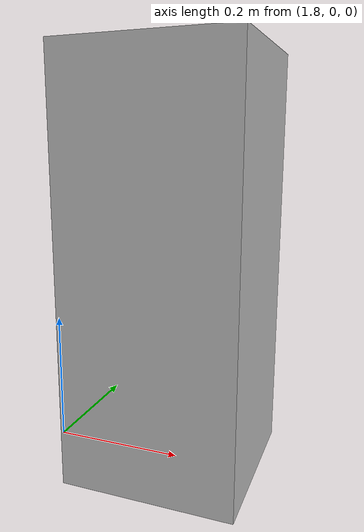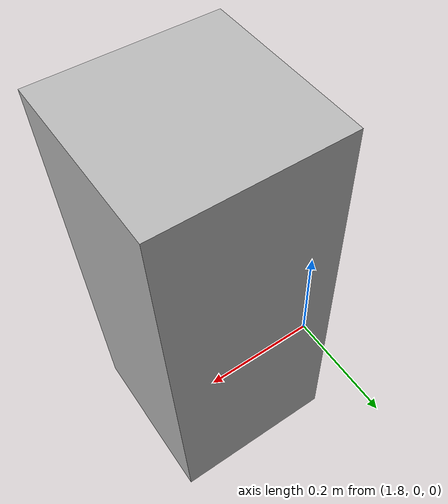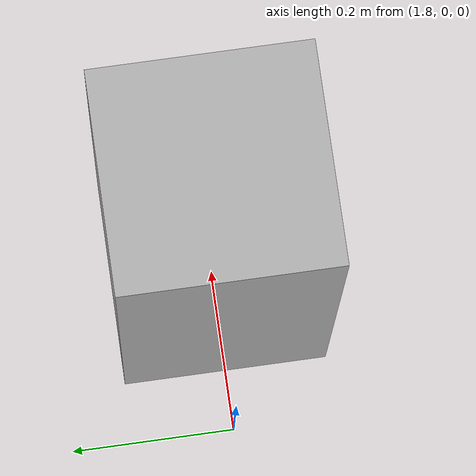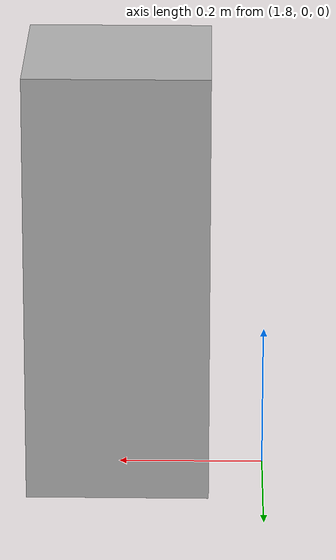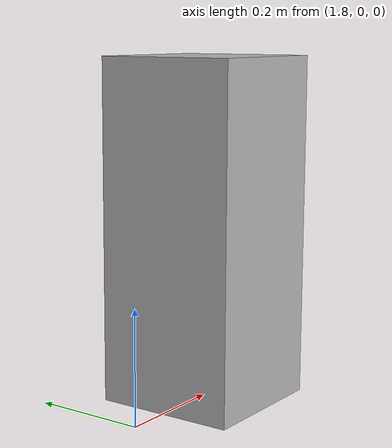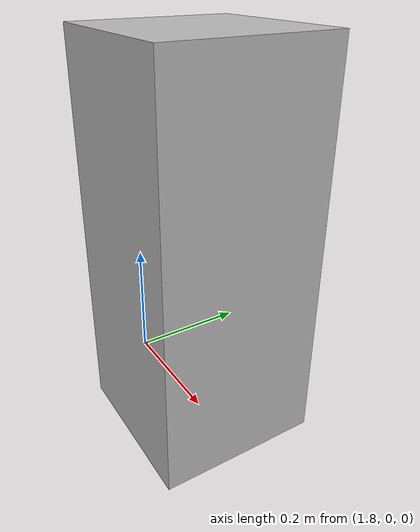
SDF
<sdf version="1.4">
<model name="obs2">
  <pose>2.0 0 0.3 0 0 0</pose>
  <static>true</static>
    <link name="link">
      <inertial>
        <mass>10.0</mass>
        <inertia>
          <ixx>0.083</ixx>
          <ixy>0.0</ixy>
          <ixz>0.0</ixz>
          <iyy>0.083</iyy>
          <iyz>0.0</iyz>
          <izz>0.083</izz>
        </inertia>
      </inertial>
      <collision name="collision">
        <geometry>
          <box>
	    <size>0.25 0.25 0.6</size>
          </box>
        </geometry>
      </collision>
      <visual name="visual">
        <geometry>
          <box>
            <size>0.25 0.25 0.6</size>
          </box>
        </geometry>
      </visual>
    </link>
  </model>
</sdf>
